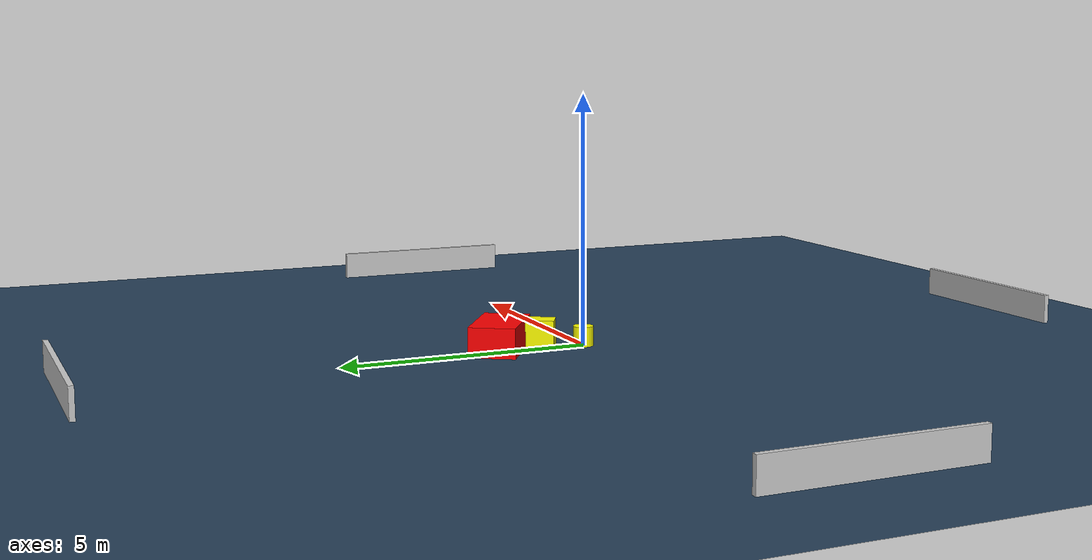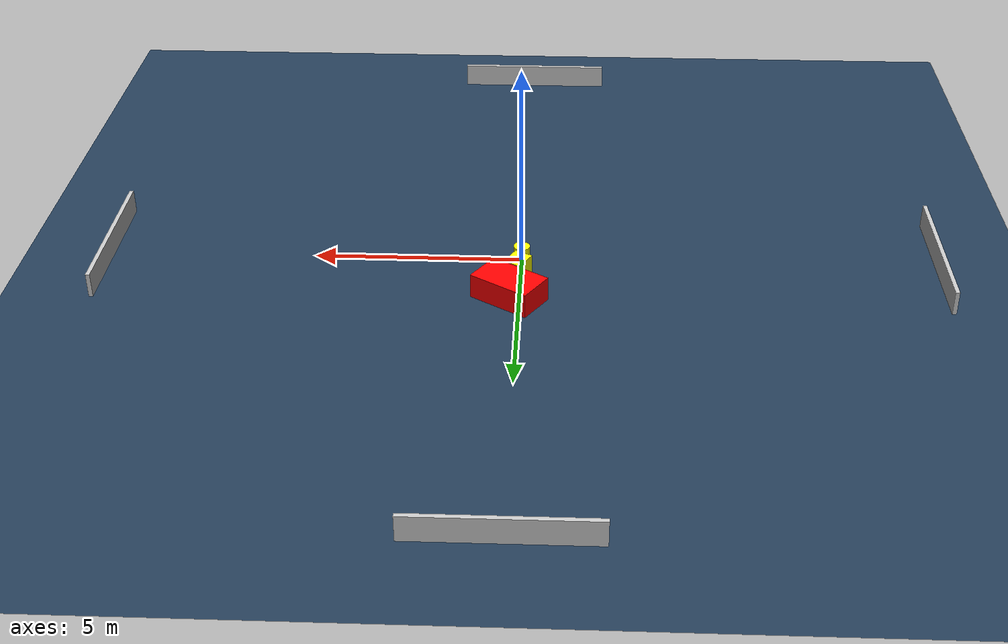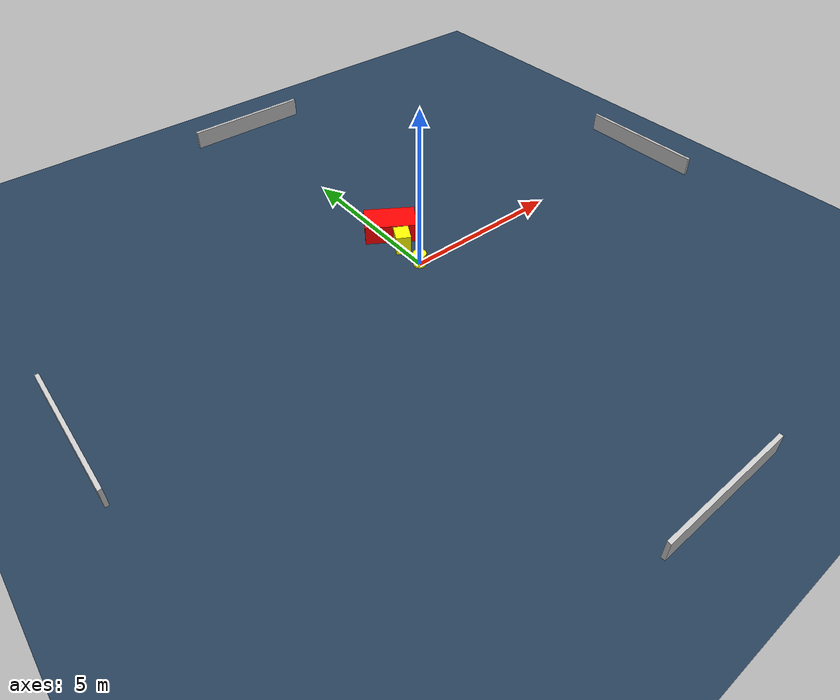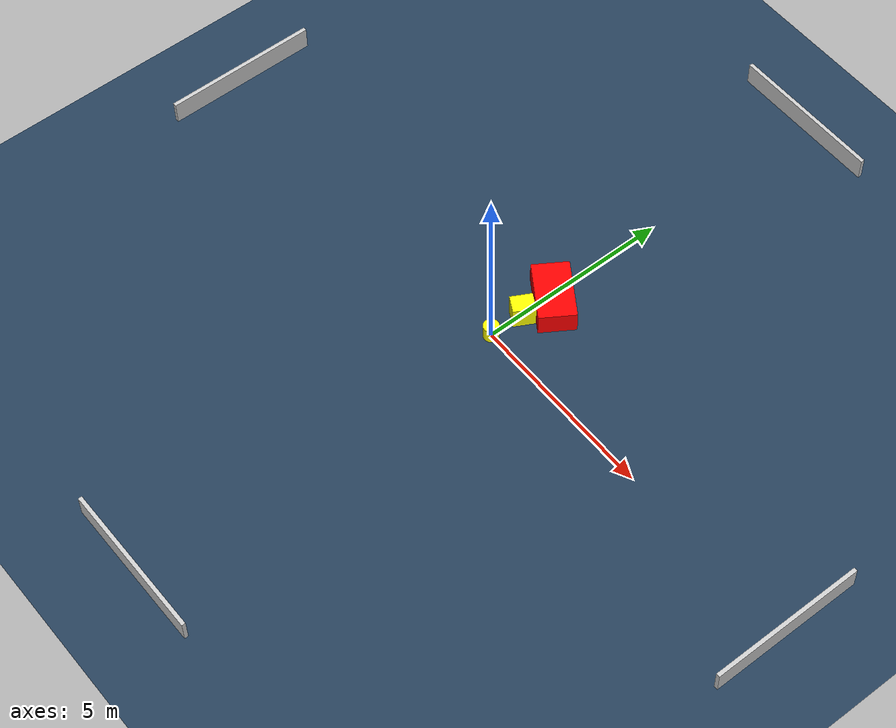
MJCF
<?xml version="1.0" ?>
<mujoco model="generated_environment">
  <option timestep="0.01" integrator="RK4" cone="elliptic"/>
  <default>
    <geom density="1"/>
  </default>
  <asset>
    <texture builtin="gradient" height="3072" name="skybox" rgb1="0.3 0.5 0.7" rgb2="0 0 0" type="skybox" width="512"/>
    <texture builtin="checker" height="300" name="groundplane" rgb1="0.2 0.3 0.4" rgb2="0.1 0.2 0.3" type="2d" width="300"/>
    <material name="groundplane" reflectance="0.2" texrepeat="5 5" texture="groundplane"/>
  </asset>
  <worldbody>
    <light dir="0 0 -1" directional="true" pos="0 0 1.5"/>
    <geom condim="3" friction="0.5 0.005 0.001" material="groundplane" name="floor" pos="0 0 0" size="0 0 0.05" type="plane"/>
    <body name="walls">
      <geom name="wall_1" condim="4" pos="-10.0 0.0 0.3" rgba="0.800000011920929 0.800000011920929 0.800000011920929 1.0" size="0.05 2.0 0.3" type="box"/>
      <geom name="wall_2" condim="4" pos="10.0 0.0 0.3" rgba="0.800000011920929 0.800000011920929 0.800000011920929 1.0" size="0.05 2.0 0.3" type="box"/>
      <geom name="wall_3" condim="4" pos="0.0 -10.0 0.3" rgba="0.800000011920929 0.800000011920929 0.800000011920929 1.0" size="2.0 0.05 0.3" type="box"/>
      <geom name="wall_4" condim="4" pos="0.0 10.0 0.3" rgba="0.800000011920929 0.800000011920929 0.800000011920929 1.0" size="2.0 0.05 0.3" type="box"/>
    </body>
    <body name="robot">
      <joint name="joint_x" type="slide" pos="0 0 0" axis="1 0 0"/>
      <joint name="joint_y" type="slide" pos="0 0 0" axis="0 1 0"/>
      <geom name="robot" type="cylinder" pos="0.0 0.0 0.2" size="0.2 0.2 0.0" mass="5.0" friction="1.0 0.005 0.0001" condim="4" rgba="1.0 1.0 0.0 1.0"/>
    </body>
    <body name="obstacle_1_movable">
      <geom name="obstacle_1_movable" condim="4" pos="0.06281208159703609 0.8931788378175682 0.3" euler="0 0 241.35962142547163" friction="0.0 0.005 0.001" rgba="1.0 1.0 0.0 1.0" size="0.28136783071582927 0.22679165795857095 0.3" type="box" mass="0.1"/>
      <joint type="free"/>
    </body>
    <body name="obstacle_2_static">
      <geom name="obstacle_2_static" condim="4" pos="0.23143212915432348 1.697834957665082 0.3" euler="0 0 327.01273962391156" friction="0.0 0.005 0.001" rgba="1.0 0.0 0.0 1.0" size="0.7759778356437588 0.4661407828074637 0.3" type="box"/>
    </body>
  </worldbody>
  <actuator>
    <motor name="actuator_x" joint="joint_x" gear="1" ctrlrange="-1 1"/>
    <motor name="actuator_y" joint="joint_y" gear="1" ctrlrange="-1 1"/>
  </actuator>
</mujoco>
